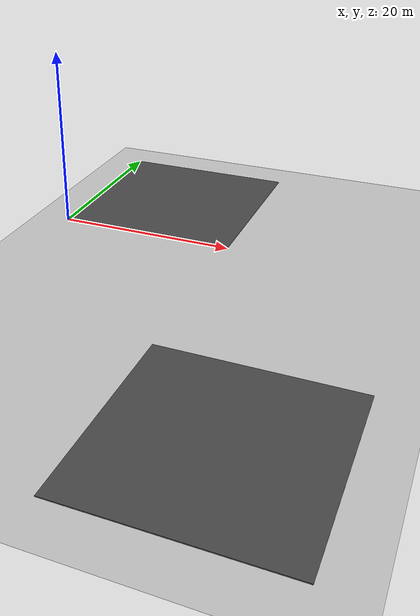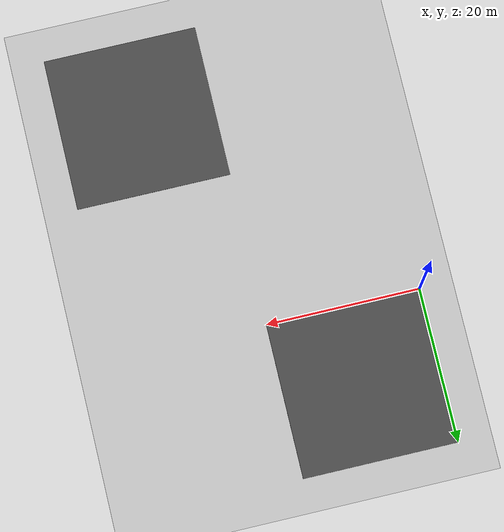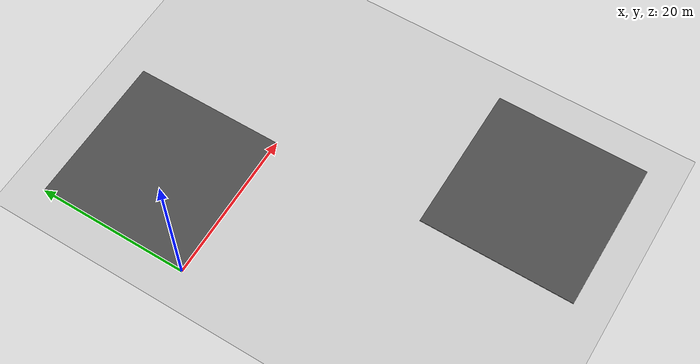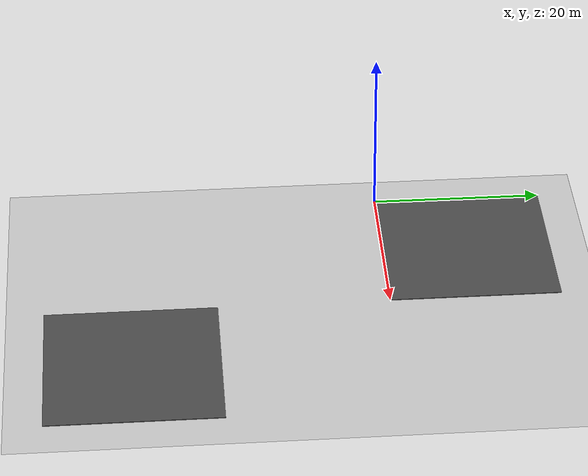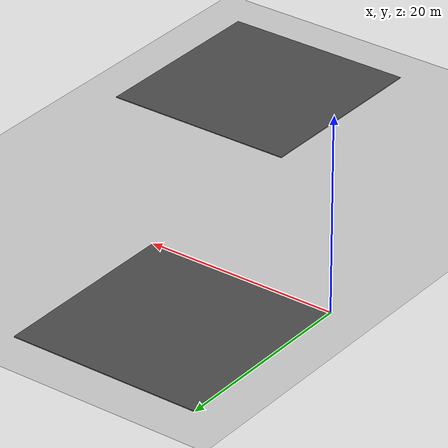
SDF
<sdf version="1.4">
 <world name="default">
  <model name="ground_plane">
   <static>1</static>
   <link name="link">
    <collision name="collision">
     <geometry><plane><normal>0 0 1</normal><size>100 100</size></plane></geometry>
     <surface><friction><ode><mu>100</mu><mu2>50</mu2></ode></friction></surface>
    </collision>
    <visual name="visual">
     <cast_shadows>0</cast_shadows>
     <geometry><plane><normal>0 0 1</normal><size>100 100</size></plane></geometry>
     <material>
      <script><uri>file://media/materials/scripts/gazebo.material</uri><name>Gazebo/Grey</name></script>
     </material>
    </visual>
    <velocity_decay><linear>0</linear><angular>0</angular></velocity_decay>
   </link>
  </model>
  <model name="asphalt_plane">
   <static>1</static>
   <link name="link">
    <collision name="collision"><geometry><box><size>20 20 0.1</size></box></geometry></collision>
    <visual name="visual">
     <cast_shadows>0</cast_shadows>
     <geometry><box><size>20 20 0.1</size></box></geometry>
     <material>
      <script>
       <uri>model://asphalt_plane/materials/scripts</uri>
       <uri>model://asphalt_plane/materials/textures</uri>
       <name>vrc/asphalt</name>
      </script>
     </material>
    </visual>
    <velocity_decay><linear>0</linear><angular>0</angular></velocity_decay>
   </link>
   <pose>10 10 0 0 -0 0</pose>
  </model>
  <model name="asphalt_plane_8">
   <static>1</static>
   <link name="link">
    <collision name="collision"><geometry><box><size>20 20 0.1</size></box></geometry></collision>
    <visual name="visual">
     <cast_shadows>0</cast_shadows>
     <geometry><box><size>20 20 0.1</size></box></geometry>
     <material>
      <script>
       <uri>model://asphalt_plane/materials/scripts</uri>
       <uri>model://asphalt_plane/materials/textures</uri>
       <name>vrc/asphalt</name>
      </script>
     </material>
    </visual>
    <velocity_decay><linear>0</linear><angular>0</angular></velocity_decay>
   </link>
   <pose>30 -30 0 0 -0 0</pose>
  </model>
 </world>
</sdf>
